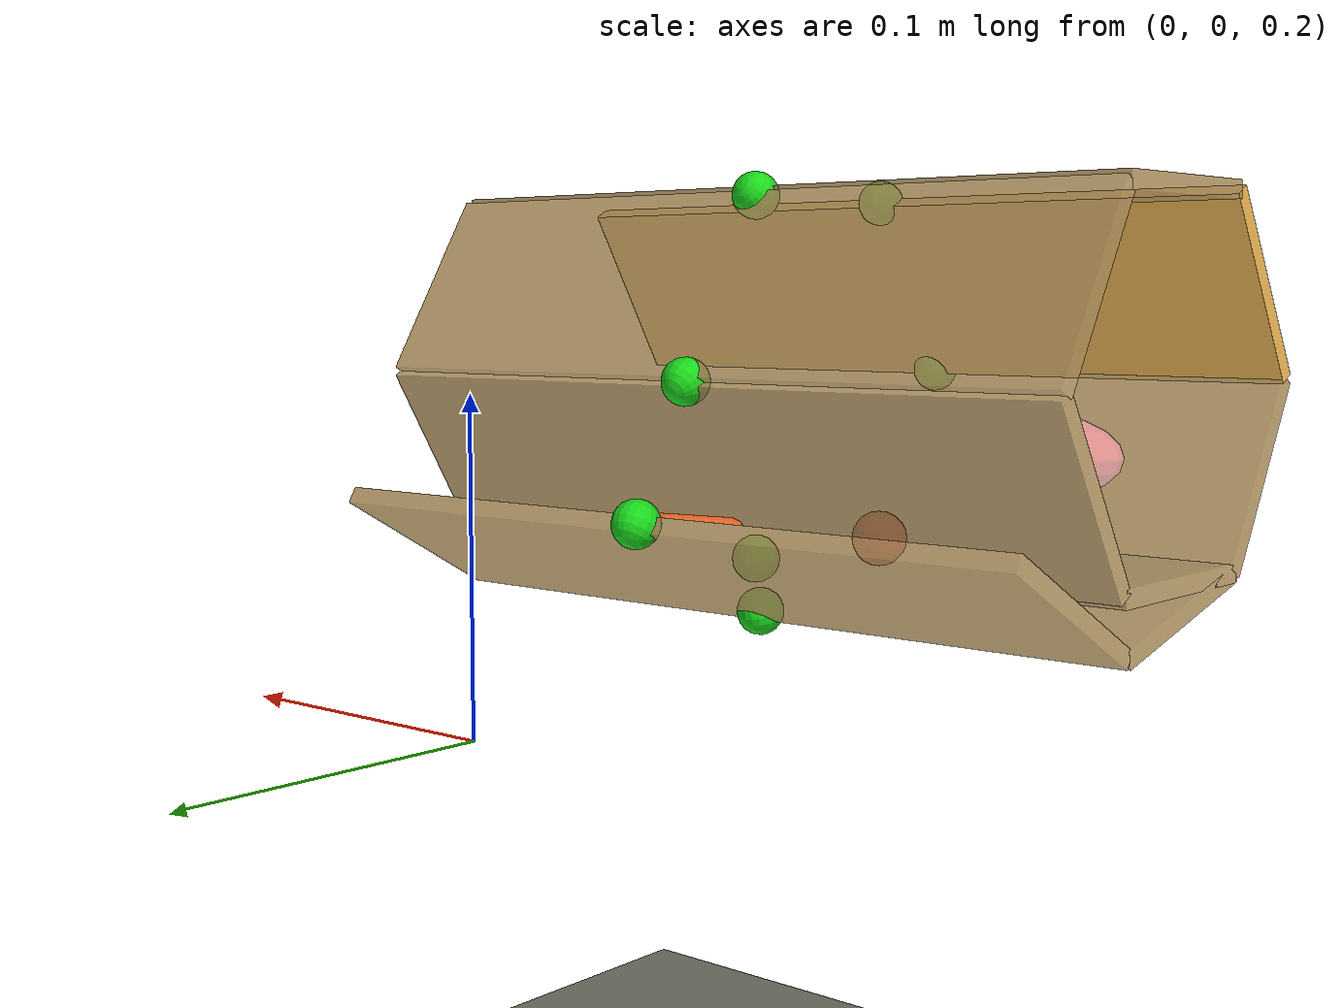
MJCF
<mujoco model="panel_designer_open_panel">
  <compiler angle="degree" inertiafromgeom="true" autolimits="true"/>
  <option timestep="0.001" solver="Newton" iterations="80" tolerance="1e-9" cone="elliptic" impratio="5"/>

  <visual>
    <global azimuth="135" elevation="-25" offwidth="1280" offheight="720"/>
  </visual>

  <asset>
    <texture name="tex_floor" type="2d" builtin="checker" width="512" height="512"
             rgb1="0.72 0.72 0.68" rgb2="0.62 0.62 0.58"/>
    <material name="mat_floor" texture="tex_floor" texrepeat="3 3" rgba="0.75 0.75 0.70 1"/>
    <material name="mat_panel" rgba="0.75 0.62 0.39 0.88"/>
    <material name="mat_top_panel" rgba="0.94 0.72 0.33 0.93"/>
    <material name="mat_hinge" rgba="1.0 0.52 0.02 1"/>
    <material name="mat_hidden_mass" rgba="0.78 0.08 0.05 0.45"/>
  </asset>

  <worldbody>
    <light name="key" pos="0 -1 1.6" dir="0.1 0.7 -1"/>
    <camera name="designer_cam" pos="0.58 -0.88 0.50" xyaxes="0.83 0.55 0 -0.25 0.38 0.89"/>
    <camera name="front_cam" pos="0 -0.92 0.26" xyaxes="1 0 0 0 0.24 0.97"/>
    <geom name="floor" type="plane" size="1.2 1.2 0.02" material="mat_floor"/>

    <body name="bag_frame" pos="0 -0.196000 0.240000">
      <freejoint name="bag_frame_freejoint"/>
      <site name="site_close_root" pos="0 0 0" size="0.010" rgba="1 0.2 0.2 1"/>
      <geom name="designer_root_hinge_bar" type="capsule" fromto="-0.145600 0 0 0.145600 0 0"
            size="0.007" material="mat_hinge" contype="0" conaffinity="0" group="4"/>
      <body name="panel_0" pos="0 0.000000 0" euler="0.000000 0 0">
        <joint name="hinge_panel_0" type="hinge" axis="1 0 0" range="-90.0000 90.0000"
               limited="true" damping="0.020000" stiffness="0.000000"
               springref="0" armature="0.000300"/>
        <geom name="geom_panel_0" type="box" pos="0 0.035000 0"
              size="0.140000 0.035000 0.003000"
              mass="0.045000" material="mat_panel" condim="4" friction="1.0 0.04 0.004"/>
        <site name="site_panel_0_tip" pos="0 0.070000 0" size="0.008" rgba="0.1 0.85 0.1 1"/>
        <body name="panel_1" pos="0 0.070000 0" euler="60.000000 0 0">
          <joint name="hinge_panel_1" type="hinge" axis="1 0 0" range="-90.0000 90.0000"
                 limited="true" damping="0.020000" stiffness="0.000000"
                 springref="0" armature="0.000300"/>
          <geom name="geom_panel_1" type="box" pos="0 0.035000 0"
                size="0.140000 0.035000 0.003000"
                mass="0.045000" material="mat_panel" condim="4" friction="1.0 0.04 0.004"/>
          <site name="site_panel_1_tip" pos="0 0.070000 0" size="0.008" rgba="0.1 0.85 0.1 1"/>
          <body name="panel_2" pos="0 0.070000 0" euler="60.000000 0 0">
            <joint name="hinge_panel_2" type="hinge" axis="1 0 0" range="-90.0000 90.0000"
                   limited="true" damping="0.020000" stiffness="0.000000"
                   springref="0" armature="0.000300"/>
            <geom name="geom_panel_2" type="box" pos="0 0.035000 0"
                  size="0.140000 0.035000 0.003000"
                  mass="0.045000" material="mat_panel" condim="4" friction="1.0 0.04 0.004"/>
            <site name="site_panel_2_tip" pos="0 0.070000 0" size="0.008" rgba="0.1 0.85 0.1 1"/>
            <body name="panel_3" pos="0 0.070000 0" euler="60.000000 0 0">
              <joint name="hinge_panel_3" type="hinge" axis="1 0 0" range="-90.0000 90.0000"
                     limited="true" damping="0.020000" stiffness="0.000000"
                     springref="0" armature="0.000300"/>
              <geom name="geom_panel_3" type="box" pos="0 0.035000 0"
                    size="0.140000 0.035000 0.003000"
                    mass="0.045000" material="mat_panel" condim="4" friction="1.0 0.04 0.004"/>
              <site name="site_panel_3_tip" pos="0 0.070000 0" size="0.008" rgba="0.1 0.85 0.1 1"/>
              <body name="panel_4" pos="0 0.070000 0" euler="60.000000 0 0">
                <joint name="hinge_panel_4" type="hinge" axis="1 0 0" range="-90.0000 90.0000"
                       limited="true" damping="0.020000" stiffness="0.000000"
                       springref="0" armature="0.000300"/>
                <geom name="geom_panel_4" type="box" pos="0 0.035000 0"
                      size="0.140000 0.035000 0.003000"
                      mass="0.045000" material="mat_top_panel" condim="4" friction="1.0 0.04 0.004"/>
                <site name="site_panel_4_tip" pos="0 0.070000 0" size="0.008" rgba="0.1 0.85 0.1 1"/>
                <body name="panel_5" pos="0 0.070000 0" euler="60.000000 0 0">
                  <joint name="hinge_panel_5" type="hinge" axis="1 0 0" range="-90.0000 90.0000"
                         limited="true" damping="0.020000" stiffness="0.000000"
                         springref="0" armature="0.000300"/>
                  <geom name="geom_panel_5" type="box" pos="0 0.035000 0"
                        size="0.140000 0.035000 0.003000"
                        mass="0.045000" material="mat_panel" condim="4" friction="1.0 0.04 0.004"/>
                  <site name="site_panel_5_tip" pos="0 0.070000 0" size="0.008" rgba="0.1 0.85 0.1 1"/>
                  <body name="panel_6" pos="0 0.070000 0" euler="45.000000 0 0">
                    <joint name="hinge_panel_6" type="hinge" axis="1 0 0" range="-90.0000 90.0000"
                           limited="true" damping="0.020000" stiffness="0.000000"
                           springref="0" armature="0.000300"/>
                    <geom name="geom_panel_6" type="box" pos="0 0.035000 0"
                          size="0.140000 0.035000 0.003000"
                          mass="0.045000" material="mat_panel" condim="4" friction="1.0 0.04 0.004"/>
                    <site name="site_panel_6_tip" pos="0 0.070000 0" size="0.008" rgba="0.1 0.85 0.1 1"/>
                    <body name="panel_7" pos="0 0.070000 0" euler="45.000000 0 0">
                      <joint name="hinge_panel_7" type="hinge" axis="1 0 0" range="-90.0000 90.0000"
                             limited="true" damping="0.020000" stiffness="0.000000"
                             springref="0" armature="0.000300"/>
                      <geom name="geom_panel_7" type="box" pos="0 0.035000 0"
                            size="0.140000 0.035000 0.003000"
                            mass="0.045000" material="mat_panel" condim="4" friction="1.0 0.04 0.004"/>
                      <site name="site_panel_7_tip" pos="0 0.070000 0" size="0.008" rgba="0.1 0.85 0.1 1"/>
                    </body>
                  </body>
                </body>
              </body>
            </body>
          </body>
        </body>
      </body>

      <body name="hidden_mass_00" pos="-0.081200 0.028000 0.036400">
        <joint name="hidden_mass_00_slide_x" type="slide" axis="1 0 0" range="-0.055000 0.055000" damping="0.050000" armature="0.000100" limited="true"/>
        <joint name="hidden_mass_00_slide_y" type="slide" axis="0 1 0" range="-0.055000 0.055000" damping="0.050000" armature="0.000100" limited="true"/>
        <joint name="hidden_mass_00_slide_z" type="slide" axis="0 0 1" range="-0.055000 0.055000" damping="0.050000" armature="0.000100" limited="true"/>
        <joint name="hidden_mass_00_ball" type="ball" damping="0.050000" armature="0.000100"/>
        <geom name="geom_hidden_mass_00" type="ellipsoid" size="0.032400 0.019000 0.014400" mass="0.028333"
              material="mat_hidden_mass" condim="4" friction="1.0 0.03 0.003"/>
      </body>

      <body name="hidden_mass_01" pos="-0.066436 0.036400 0.043400">
        <joint name="hidden_mass_01_slide_x" type="slide" axis="1 0 0" range="-0.055000 0.055000" damping="0.050000" armature="0.000100" limited="true"/>
        <joint name="hidden_mass_01_slide_y" type="slide" axis="0 1 0" range="-0.055000 0.055000" damping="0.050000" armature="0.000100" limited="true"/>
        <joint name="hidden_mass_01_slide_z" type="slide" axis="0 0 1" range="-0.055000 0.055000" damping="0.050000" armature="0.000100" limited="true"/>
        <joint name="hidden_mass_01_ball" type="ball" damping="0.050000" armature="0.000100"/>
        <geom name="geom_hidden_mass_01" type="ellipsoid" size="0.027600 0.021000 0.016000" mass="0.028333"
              material="mat_hidden_mass" condim="4" friction="1.0 0.03 0.003"/>
      </body>

      <body name="hidden_mass_02" pos="-0.051673 0.044800 0.029400">
        <joint name="hidden_mass_02_slide_x" type="slide" axis="1 0 0" range="-0.055000 0.055000" damping="0.050000" armature="0.000100" limited="true"/>
        <joint name="hidden_mass_02_slide_y" type="slide" axis="0 1 0" range="-0.055000 0.055000" damping="0.050000" armature="0.000100" limited="true"/>
        <joint name="hidden_mass_02_slide_z" type="slide" axis="0 0 1" range="-0.055000 0.055000" damping="0.050000" armature="0.000100" limited="true"/>
        <joint name="hidden_mass_02_ball" type="ball" damping="0.050000" armature="0.000100"/>
        <geom name="geom_hidden_mass_02" type="ellipsoid" size="0.032400 0.021000 0.016000" mass="0.028333"
              material="mat_hidden_mass" condim="4" friction="1.0 0.03 0.003"/>
      </body>

      <body name="hidden_mass_03" pos="-0.036909 0.028000 0.036400">
        <joint name="hidden_mass_03_slide_x" type="slide" axis="1 0 0" range="-0.055000 0.055000" damping="0.050000" armature="0.000100" limited="true"/>
        <joint name="hidden_mass_03_slide_y" type="slide" axis="0 1 0" range="-0.055000 0.055000" damping="0.050000" armature="0.000100" limited="true"/>
        <joint name="hidden_mass_03_slide_z" type="slide" axis="0 0 1" range="-0.055000 0.055000" damping="0.050000" armature="0.000100" limited="true"/>
        <joint name="hidden_mass_03_ball" type="ball" damping="0.050000" armature="0.000100"/>
        <geom name="geom_hidden_mass_03" type="ellipsoid" size="0.027600 0.019000 0.016000" mass="0.028333"
              material="mat_hidden_mass" condim="4" friction="1.0 0.03 0.003"/>
      </body>

      <body name="hidden_mass_04" pos="-0.022145 0.036400 0.043400">
        <joint name="hidden_mass_04_slide_x" type="slide" axis="1 0 0" range="-0.055000 0.055000" damping="0.050000" armature="0.000100" limited="true"/>
        <joint name="hidden_mass_04_slide_y" type="slide" axis="0 1 0" range="-0.055000 0.055000" damping="0.050000" armature="0.000100" limited="true"/>
        <joint name="hidden_mass_04_slide_z" type="slide" axis="0 0 1" range="-0.055000 0.055000" damping="0.050000" armature="0.000100" limited="true"/>
        <joint name="hidden_mass_04_ball" type="ball" damping="0.050000" armature="0.000100"/>
        <geom name="geom_hidden_mass_04" type="ellipsoid" size="0.032400 0.021000 0.014400" mass="0.028333"
              material="mat_hidden_mass" condim="4" friction="1.0 0.03 0.003"/>
      </body>

      <body name="hidden_mass_05" pos="-0.007382 0.044800 0.029400">
        <joint name="hidden_mass_05_slide_x" type="slide" axis="1 0 0" range="-0.055000 0.055000" damping="0.050000" armature="0.000100" limited="true"/>
        <joint name="hidden_mass_05_slide_y" type="slide" axis="0 1 0" range="-0.055000 0.055000" damping="0.050000" armature="0.000100" limited="true"/>
        <joint name="hidden_mass_05_slide_z" type="slide" axis="0 0 1" range="-0.055000 0.055000" damping="0.050000" armature="0.000100" limited="true"/>
        <joint name="hidden_mass_05_ball" type="ball" damping="0.050000" armature="0.000100"/>
        <geom name="geom_hidden_mass_05" type="ellipsoid" size="0.027600 0.021000 0.016000" mass="0.028333"
              material="mat_hidden_mass" condim="4" friction="1.0 0.03 0.003"/>
      </body>

      <body name="hidden_mass_06" pos="0.007382 0.028000 0.036400">
        <joint name="hidden_mass_06_slide_x" type="slide" axis="1 0 0" range="-0.055000 0.055000" damping="0.050000" armature="0.000100" limited="true"/>
        <joint name="hidden_mass_06_slide_y" type="slide" axis="0 1 0" range="-0.055000 0.055000" damping="0.050000" armature="0.000100" limited="true"/>
        <joint name="hidden_mass_06_slide_z" type="slide" axis="0 0 1" range="-0.055000 0.055000" damping="0.050000" armature="0.000100" limited="true"/>
        <joint name="hidden_mass_06_ball" type="ball" damping="0.050000" armature="0.000100"/>
        <geom name="geom_hidden_mass_06" type="ellipsoid" size="0.032400 0.019000 0.016000" mass="0.028333"
              material="mat_hidden_mass" condim="4" friction="1.0 0.03 0.003"/>
      </body>

      <body name="hidden_mass_07" pos="0.022145 0.036400 0.043400">
        <joint name="hidden_mass_07_slide_x" type="slide" axis="1 0 0" range="-0.055000 0.055000" damping="0.050000" armature="0.000100" limited="true"/>
        <joint name="hidden_mass_07_slide_y" type="slide" axis="0 1 0" range="-0.055000 0.055000" damping="0.050000" armature="0.000100" limited="true"/>
        <joint name="hidden_mass_07_slide_z" type="slide" axis="0 0 1" range="-0.055000 0.055000" damping="0.050000" armature="0.000100" limited="true"/>
        <joint name="hidden_mass_07_ball" type="ball" damping="0.050000" armature="0.000100"/>
        <geom name="geom_hidden_mass_07" type="ellipsoid" size="0.027600 0.021000 0.016000" mass="0.028333"
              material="mat_hidden_mass" condim="4" friction="1.0 0.03 0.003"/>
      </body>

      <body name="hidden_mass_08" pos="0.036909 0.044800 0.029400">
        <joint name="hidden_mass_08_slide_x" type="slide" axis="1 0 0" range="-0.055000 0.055000" damping="0.050000" armature="0.000100" limited="true"/>
        <joint name="hidden_mass_08_slide_y" type="slide" axis="0 1 0" range="-0.055000 0.055000" damping="0.050000" armature="0.000100" limited="true"/>
        <joint name="hidden_mass_08_slide_z" type="slide" axis="0 0 1" range="-0.055000 0.055000" damping="0.050000" armature="0.000100" limited="true"/>
        <joint name="hidden_mass_08_ball" type="ball" damping="0.050000" armature="0.000100"/>
        <geom name="geom_hidden_mass_08" type="ellipsoid" size="0.032400 0.021000 0.014400" mass="0.028333"
              material="mat_hidden_mass" condim="4" friction="1.0 0.03 0.003"/>
      </body>

      <body name="hidden_mass_09" pos="0.051673 0.028000 0.036400">
        <joint name="hidden_mass_09_slide_x" type="slide" axis="1 0 0" range="-0.055000 0.055000" damping="0.050000" armature="0.000100" limited="true"/>
        <joint name="hidden_mass_09_slide_y" type="slide" axis="0 1 0" range="-0.055000 0.055000" damping="0.050000" armature="0.000100" limited="true"/>
        <joint name="hidden_mass_09_slide_z" type="slide" axis="0 0 1" range="-0.055000 0.055000" damping="0.050000" armature="0.000100" limited="true"/>
        <joint name="hidden_mass_09_ball" type="ball" damping="0.050000" armature="0.000100"/>
        <geom name="geom_hidden_mass_09" type="ellipsoid" size="0.027600 0.019000 0.016000" mass="0.028333"
              material="mat_hidden_mass" condim="4" friction="1.0 0.03 0.003"/>
      </body>

      <body name="hidden_mass_10" pos="0.066436 0.036400 0.043400">
        <joint name="hidden_mass_10_slide_x" type="slide" axis="1 0 0" range="-0.055000 0.055000" damping="0.050000" armature="0.000100" limited="true"/>
        <joint name="hidden_mass_10_slide_y" type="slide" axis="0 1 0" range="-0.055000 0.055000" damping="0.050000" armature="0.000100" limited="true"/>
        <joint name="hidden_mass_10_slide_z" type="slide" axis="0 0 1" range="-0.055000 0.055000" damping="0.050000" armature="0.000100" limited="true"/>
        <joint name="hidden_mass_10_ball" type="ball" damping="0.050000" armature="0.000100"/>
        <geom name="geom_hidden_mass_10" type="ellipsoid" size="0.032400 0.021000 0.016000" mass="0.028333"
              material="mat_hidden_mass" condim="4" friction="1.0 0.03 0.003"/>
      </body>

      <body name="hidden_mass_11" pos="0.081200 0.044800 0.029400">
        <joint name="hidden_mass_11_slide_x" type="slide" axis="1 0 0" range="-0.055000 0.055000" damping="0.050000" armature="0.000100" limited="true"/>
        <joint name="hidden_mass_11_slide_y" type="slide" axis="0 1 0" range="-0.055000 0.055000" damping="0.050000" armature="0.000100" limited="true"/>
        <joint name="hidden_mass_11_slide_z" type="slide" axis="0 0 1" range="-0.055000 0.055000" damping="0.050000" armature="0.000100" limited="true"/>
        <joint name="hidden_mass_11_ball" type="ball" damping="0.050000" armature="0.000100"/>
        <geom name="geom_hidden_mass_11" type="ellipsoid" size="0.027600 0.021000 0.016000" mass="0.028333"
              material="mat_hidden_mass" condim="4" friction="1.0 0.03 0.003"/>
      </body>
    </body>
  </worldbody>

  <tendon>
    <spatial name="close_loop_panel_7_to_root"
             stiffness="2800.000000"
             damping="11.200000"
             springlength="0.0"
             width="0.004"
             rgba="1 0.35 0.05 0.85">
      <site site="site_panel_7_tip"/>
      <site site="site_close_root"/>
    </spatial>
  </tendon>

</mujoco>
